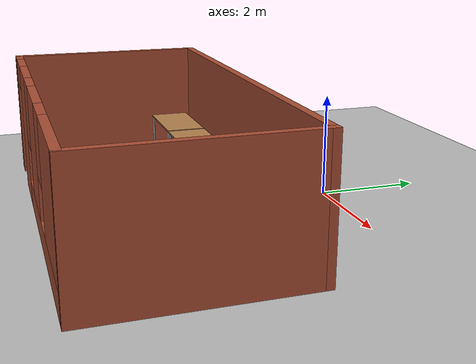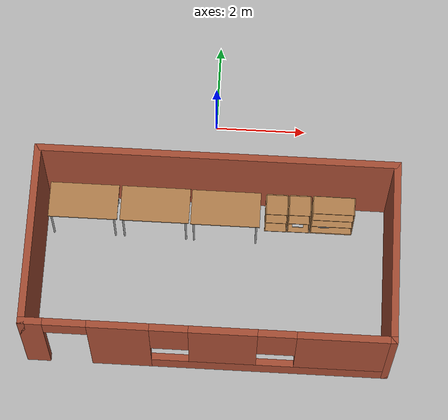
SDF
<sdf version="1.7">
 <world name="default">
  <light name="sun" type="directional">
   <pose>0 0 10 0 -0 0</pose>
   <diffuse>0.8 0.8 0.8 1</diffuse>
   <specular>0.2 0.2 0.2 1</specular>
   <attenuation>
    <range>1000</range>
    <constant>0.9</constant>
    <linear>0.01</linear>
    <quadratic>0.001</quadratic>
   </attenuation>
   <direction>-0.5 0.1 -0.9</direction>
   <spot><inner_angle>0</inner_angle><outer_angle>0</outer_angle><falloff>0</falloff></spot>
  </light>
  <model name="ground_plane">
   <static>1</static>
   <link name="link">
    <collision name="collision">
     <geometry><plane><normal>0 0 1</normal><size>100 100</size></plane></geometry>
     <surface>
      <contact><collide_bitmask>65535</collide_bitmask></contact>
      <friction><ode><mu>100</mu><mu2>50</mu2></ode></friction>
     </surface>
    </collision>
    <visual name="visual">
     <cast_shadows>0</cast_shadows>
     <geometry><plane><normal>0 0 1</normal><size>100 100</size></plane></geometry>
     <material>
      <script><uri>file://media/materials/scripts/gazebo.material</uri><name>Gazebo/Grey</name></script>
     </material>
    </visual>
   </link>
  </model>
  <gravity>0 0 -9.8</gravity>
  <magnetic_field>6e-06 2.3e-05 -4.2e-05</magnetic_field>
  <atmosphere type="adiabatic"/>
  <physics type="ode">
   <max_step_size>0.001</max_step_size>
   <real_time_factor>1</real_time_factor>
   <real_time_update_rate>1000</real_time_update_rate>
  </physics>
  <scene><ambient>0.4 0.4 0.4 1</ambient><background>0.7 0.7 0.7 1</background><shadows>1</shadows></scene>
  <audio><device>default</device></audio>
  <spherical_coordinates>
   <surface_model>EARTH_WGS84</surface_model>
   <latitude_deg>0</latitude_deg>
   <longitude_deg>0</longitude_deg>
   <elevation>0</elevation>
   <heading_deg>0</heading_deg>
  </spherical_coordinates>
  <model name="OfficeRoom">
   <pose>0.11 -2.8425 0 0 -0 0</pose>
   <link name="Wall_0">
    <collision name="Wall_0_Collision">
     <geometry><box><size>4 0.15 2.5</size></box></geometry>
     <pose>0 0 1.25 0 -0 0</pose>
    </collision>
    <visual name="Wall_0_Visual">
     <pose>0 0 1.25 0 -0 0</pose>
     <geometry><box><size>4 0.15 2.5</size></box></geometry>
     <material>
      <script><uri>file://media/materials/scripts/gazebo.material</uri><name>Gazebo/Bricks</name></script>
      <ambient>1 1 1 1</ambient>
     </material>
     <meta><layer>0</layer></meta>
    </visual>
    <pose>-3.8 -0.8425 0 0 -0 -1.5708</pose>
   </link>
   <link name="Wall_1">
    <pose>-0 -2.7675 0 0 -0 0</pose>
    <visual name="Wall_1_Visual_0">
     <pose>-3.6225 0 1.25 0 -0 0</pose>
     <geometry><box><size>0.505 0.15 2.5</size></box></geometry>
     <material>
      <script><uri>file://media/materials/scripts/gazebo.material</uri><name>Gazebo/Bricks</name></script>
      <ambient>1 1 1 1</ambient>
     </material>
     <meta><layer>0</layer></meta>
    </visual>
    <collision name="Wall_1_Collision_0">
     <geometry><box><size>0.505 0.15 2.5</size></box></geometry>
     <pose>-3.6225 0 1.25 0 -0 0</pose>
    </collision>
    <visual name="Wall_1_Visual_1">
     <pose>-1.83 0 1.25 0 -0 0</pose>
     <geometry><box><size>1.28 0.15 2.5</size></box></geometry>
     <material>
      <script><uri>file://media/materials/scripts/gazebo.material</uri><name>Gazebo/Bricks</name></script>
      <ambient>1 1 1 1</ambient>
     </material>
     <meta><layer>0</layer></meta>
    </visual>
    <collision name="Wall_1_Collision_1">
     <geometry><box><size>1.28 0.15 2.5</size></box></geometry>
     <pose>-1.83 0 1.25 0 -0 0</pose>
    </collision>
    <visual name="Wall_1_Visual_2">
     <pose>1.3425 0 0.25 0 -0 0</pose>
     <geometry><box><size>5.065 0.15 0.5</size></box></geometry>
     <material>
      <script><uri>file://media/materials/scripts/gazebo.material</uri><name>Gazebo/Bricks</name></script>
      <ambient>1 1 1 1</ambient>
     </material>
     <meta><layer>0</layer></meta>
    </visual>
    <collision name="Wall_1_Collision_2">
     <geometry><box><size>5.065 0.15 0.5</size></box></geometry>
     <pose>1.3425 0 0.25 0 -0 0</pose>
    </collision>
    <visual name="Wall_1_Visual_3">
     <pose>0.32 0 1.5 0 -0 0</pose>
     <geometry><box><size>1.42 0.15 2</size></box></geometry>
     <material>
      <script><uri>file://media/materials/scripts/gazebo.material</uri><name>Gazebo/Bricks</name></script>
      <ambient>1 1 1 1</ambient>
     </material>
     <meta><layer>0</layer></meta>
    </visual>
    <collision name="Wall_1_Collision_3">
     <geometry><box><size>1.42 0.15 2</size></box></geometry>
     <pose>0.32 0 1.5 0 -0 0</pose>
    </collision>
    <visual name="Wall_1_Visual_4">
     <pose>2.8525 0 1.5 0 -0 0</pose>
     <geometry><box><size>2.045 0.15 2</size></box></geometry>
     <material>
      <script><uri>file://media/materials/scripts/gazebo.material</uri><name>Gazebo/Bricks</name></script>
      <ambient>1 1 1 1</ambient>
     </material>
     <meta><layer>0</layer></meta>
    </visual>
    <collision name="Wall_1_Collision_4">
     <geometry><box><size>2.045 0.15 2</size></box></geometry>
     <pose>2.8525 0 1.5 0 -0 0</pose>
    </collision>
    <visual name="Wall_1_Visual_5">
     <pose>-0.79 0 1.9 0 -0 0</pose>
     <geometry><box><size>0.8 0.15 1.2</size></box></geometry>
     <material>
      <script><uri>file://media/materials/scripts/gazebo.material</uri><name>Gazebo/Bricks</name></script>
      <ambient>1 1 1 1</ambient>
     </material>
     <meta><layer>0</layer></meta>
    </visual>
    <collision name="Wall_1_Collision_5">
     <geometry><box><size>0.8 0.15 1.2</size></box></geometry>
     <pose>-0.79 0 1.9 0 -0 0</pose>
    </collision>
    <visual name="Wall_1_Visual_6">
     <pose>1.43 0 1.9 0 -0 0</pose>
     <geometry><box><size>0.8 0.15 1.2</size></box></geometry>
     <material>
      <script><uri>file://media/materials/scripts/gazebo.material</uri><name>Gazebo/Bricks</name></script>
      <ambient>1 1 1 1</ambient>
     </material>
     <meta><layer>0</layer></meta>
    </visual>
    <collision name="Wall_1_Collision_6">
     <geometry><box><size>0.8 0.15 1.2</size></box></geometry>
     <pose>1.43 0 1.9 0 -0 0</pose>
    </collision>
    <visual name="Wall_1_Visual_7">
     <pose>-2.92 0 2.25 0 -0 0</pose>
     <geometry><box><size>0.9 0.15 0.5</size></box></geometry>
     <material>
      <script><uri>file://media/materials/scripts/gazebo.material</uri><name>Gazebo/Bricks</name></script>
      <ambient>1 1 1 1</ambient>
     </material>
     <meta><layer>0</layer></meta>
    </visual>
    <collision name="Wall_1_Collision_7">
     <geometry><box><size>0.9 0.15 0.5</size></box></geometry>
     <pose>-2.92 0 2.25 0 -0 0</pose>
    </collision>
   </link>
   <link name="Wall_2">
    <collision name="Wall_2_Collision">
     <geometry><box><size>4 0.15 2.5</size></box></geometry>
     <pose>0 0 1.25 0 -0 0</pose>
    </collision>
    <visual name="Wall_2_Visual">
     <pose>0 0 1.25 0 -0 0</pose>
     <geometry><box><size>4 0.15 2.5</size></box></geometry>
     <material>
      <script><uri>file://media/materials/scripts/gazebo.material</uri><name>Gazebo/Bricks</name></script>
      <ambient>1 1 1 1</ambient>
     </material>
     <meta><layer>0</layer></meta>
    </visual>
    <pose>3.8 -0.8425 0 0 -0 1.5708</pose>
   </link>
   <link name="Wall_3">
    <collision name="Wall_3_Collision">
     <geometry><box><size>7.75 0.15 2.5</size></box></geometry>
     <pose>0 0 1.25 0 -0 0</pose>
    </collision>
    <visual name="Wall_3_Visual">
     <pose>0 0 1.25 0 -0 0</pose>
     <geometry><box><size>7.75 0.15 2.5</size></box></geometry>
     <material>
      <script><uri>file://media/materials/scripts/gazebo.material</uri><name>Gazebo/Bricks</name></script>
      <ambient>1 1 1 1</ambient>
     </material>
     <meta><layer>0</layer></meta>
    </visual>
    <pose>-0 1.0825 0 0 -0 3.14159</pose>
   </link>
   <static>1</static>
  </model>
  <model name="table">
   <static>1</static>
   <link name="link">
    <collision name="surface">
     <pose>0 0 1 0 -0 0</pose>
     <geometry><box><size>1.5 0.8 0.03</size></box></geometry>
     <surface><friction><ode><mu>0.6</mu><mu2>0.6</mu2></ode></friction></surface>
    </collision>
    <visual name="visual1">
     <pose>0 0 1 0 -0 0</pose>
     <geometry><box><size>1.5 0.8 0.03</size></box></geometry>
     <material>
      <script><uri>file://media/materials/scripts/gazebo.material</uri><name>Gazebo/Wood</name></script>
     </material>
    </visual>
    <collision name="front_left_leg">
     <pose>0.68 0.38 0.5 0 -0 0</pose>
     <geometry><cylinder><radius>0.02</radius><length>1</length></cylinder></geometry>
    </collision>
    <visual name="front_left_leg">
     <pose>0.68 0.38 0.5 0 -0 0</pose>
     <geometry><cylinder><radius>0.02</radius><length>1</length></cylinder></geometry>
     <material>
      <script><uri>file://media/materials/scripts/gazebo.material</uri><name>Gazebo/Grey</name></script>
     </material>
    </visual>
    <collision name="front_right_leg">
     <pose>0.68 -0.38 0.5 0 -0 0</pose>
     <geometry><cylinder><radius>0.02</radius><length>1</length></cylinder></geometry>
    </collision>
    <visual name="front_right_leg">
     <pose>0.68 -0.38 0.5 0 -0 0</pose>
     <geometry><cylinder><radius>0.02</radius><length>1</length></cylinder></geometry>
     <material>
      <script><uri>file://media/materials/scripts/gazebo.material</uri><name>Gazebo/Grey</name></script>
     </material>
    </visual>
    <collision name="back_right_leg">
     <pose>-0.68 -0.38 0.5 0 -0 0</pose>
     <geometry><cylinder><radius>0.02</radius><length>1</length></cylinder></geometry>
    </collision>
    <visual name="back_right_leg">
     <pose>-0.68 -0.38 0.5 0 -0 0</pose>
     <geometry><cylinder><radius>0.02</radius><length>1</length></cylinder></geometry>
     <material>
      <script><uri>file://media/materials/scripts/gazebo.material</uri><name>Gazebo/Grey</name></script>
     </material>
    </visual>
    <collision name="back_left_leg">
     <pose>-0.68 0.38 0.5 0 -0 0</pose>
     <geometry><cylinder><radius>0.02</radius><length>1</length></cylinder></geometry>
    </collision>
    <visual name="back_left_leg">
     <pose>-0.68 0.38 0.5 0 -0 0</pose>
     <geometry><cylinder><radius>0.02</radius><length>1</length></cylinder></geometry>
     <material>
      <script><uri>file://media/materials/scripts/gazebo.material</uri><name>Gazebo/Grey</name></script>
     </material>
    </visual>
   </link>
   <pose>-2.76807 -2.33243 0 0 -0 0</pose>
  </model>
  <model name="table_clone">
   <static>1</static>
   <link name="link">
    <collision name="surface">
     <pose>0 0 1 0 -0 0</pose>
     <geometry><box><size>1.5 0.8 0.03</size></box></geometry>
     <surface><friction><ode><mu>0.6</mu><mu2>0.6</mu2></ode></friction></surface>
    </collision>
    <visual name="visual1">
     <pose>0 0 1 0 -0 0</pose>
     <geometry><box><size>1.5 0.8 0.03</size></box></geometry>
     <material>
      <script><uri>file://media/materials/scripts/gazebo.material</uri><name>Gazebo/Wood</name></script>
     </material>
    </visual>
    <collision name="front_left_leg">
     <pose>0.68 0.38 0.5 0 -0 0</pose>
     <geometry><cylinder><radius>0.02</radius><length>1</length></cylinder></geometry>
    </collision>
    <visual name="front_left_leg">
     <pose>0.68 0.38 0.5 0 -0 0</pose>
     <geometry><cylinder><radius>0.02</radius><length>1</length></cylinder></geometry>
     <material>
      <script><uri>file://media/materials/scripts/gazebo.material</uri><name>Gazebo/Grey</name></script>
     </material>
    </visual>
    <collision name="front_right_leg">
     <pose>0.68 -0.38 0.5 0 -0 0</pose>
     <geometry><cylinder><radius>0.02</radius><length>1</length></cylinder></geometry>
    </collision>
    <visual name="front_right_leg">
     <pose>0.68 -0.38 0.5 0 -0 0</pose>
     <geometry><cylinder><radius>0.02</radius><length>1</length></cylinder></geometry>
     <material>
      <script><uri>file://media/materials/scripts/gazebo.material</uri><name>Gazebo/Grey</name></script>
     </material>
    </visual>
    <collision name="back_right_leg">
     <pose>-0.68 -0.38 0.5 0 -0 0</pose>
     <geometry><cylinder><radius>0.02</radius><length>1</length></cylinder></geometry>
    </collision>
    <visual name="back_right_leg">
     <pose>-0.68 -0.38 0.5 0 -0 0</pose>
     <geometry><cylinder><radius>0.02</radius><length>1</length></cylinder></geometry>
     <material>
      <script><uri>file://media/materials/scripts/gazebo.material</uri><name>Gazebo/Grey</name></script>
     </material>
    </visual>
    <collision name="back_left_leg">
     <pose>-0.68 0.38 0.5 0 -0 0</pose>
     <geometry><cylinder><radius>0.02</radius><length>1</length></cylinder></geometry>
    </collision>
    <visual name="back_left_leg">
     <pose>-0.68 0.38 0.5 0 -0 0</pose>
     <geometry><cylinder><radius>0.02</radius><length>1</length></cylinder></geometry>
     <material>
      <script><uri>file://media/materials/scripts/gazebo.material</uri><name>Gazebo/Grey</name></script>
     </material>
    </visual>
   </link>
   <pose>-1.20833 -2.33586 0 0 -0 0</pose>
  </model>
  <model name="table_clone_0">
   <static>1</static>
   <link name="link">
    <collision name="surface">
     <pose>0 0 1 0 -0 0</pose>
     <geometry><box><size>1.5 0.8 0.03</size></box></geometry>
     <surface><friction><ode><mu>0.6</mu><mu2>0.6</mu2></ode></friction></surface>
    </collision>
    <visual name="visual1">
     <pose>0 0 1 0 -0 0</pose>
     <geometry><box><size>1.5 0.8 0.03</size></box></geometry>
     <material>
      <script><uri>file://media/materials/scripts/gazebo.material</uri><name>Gazebo/Wood</name></script>
     </material>
    </visual>
    <collision name="front_left_leg">
     <pose>0.68 0.38 0.5 0 -0 0</pose>
     <geometry><cylinder><radius>0.02</radius><length>1</length></cylinder></geometry>
    </collision>
    <visual name="front_left_leg">
     <pose>0.68 0.38 0.5 0 -0 0</pose>
     <geometry><cylinder><radius>0.02</radius><length>1</length></cylinder></geometry>
     <material>
      <script><uri>file://media/materials/scripts/gazebo.material</uri><name>Gazebo/Grey</name></script>
     </material>
    </visual>
    <collision name="front_right_leg">
     <pose>0.68 -0.38 0.5 0 -0 0</pose>
     <geometry><cylinder><radius>0.02</radius><length>1</length></cylinder></geometry>
    </collision>
    <visual name="front_right_leg">
     <pose>0.68 -0.38 0.5 0 -0 0</pose>
     <geometry><cylinder><radius>0.02</radius><length>1</length></cylinder></geometry>
     <material>
      <script><uri>file://media/materials/scripts/gazebo.material</uri><name>Gazebo/Grey</name></script>
     </material>
    </visual>
    <collision name="back_right_leg">
     <pose>-0.68 -0.38 0.5 0 -0 0</pose>
     <geometry><cylinder><radius>0.02</radius><length>1</length></cylinder></geometry>
    </collision>
    <visual name="back_right_leg">
     <pose>-0.68 -0.38 0.5 0 -0 0</pose>
     <geometry><cylinder><radius>0.02</radius><length>1</length></cylinder></geometry>
     <material>
      <script><uri>file://media/materials/scripts/gazebo.material</uri><name>Gazebo/Grey</name></script>
     </material>
    </visual>
    <collision name="back_left_leg">
     <pose>-0.68 0.38 0.5 0 -0 0</pose>
     <geometry><cylinder><radius>0.02</radius><length>1</length></cylinder></geometry>
    </collision>
    <visual name="back_left_leg">
     <pose>-0.68 0.38 0.5 0 -0 0</pose>
     <geometry><cylinder><radius>0.02</radius><length>1</length></cylinder></geometry>
     <material>
      <script><uri>file://media/materials/scripts/gazebo.material</uri><name>Gazebo/Grey</name></script>
     </material>
    </visual>
   </link>
   <pose>0.327419 -2.34545 0 0 -0 0</pose>
  </model>
  <model name="cabinet">
   <static>1</static>
   <link name="cabinet_bottom_plate">
    <inertial>
     <pose>0 0 -1 0 -0 0</pose>
     <inertia><ixx>2.05</ixx><ixy>0</ixy><ixz>0</ixz><iyy>2.05</iyy><iyz>0</iyz><izz>2.05</izz></inertia>
     <mass>25</mass>
    </inertial>
    <collision name="cabinet_bottom_plate_geom">
     <pose>0 0 0.01 0 -0 0</pose>
     <geometry><box><size>0.45 0.45 0.02</size></box></geometry>
    </collision>
    <visual name="cabinet_bottom_plate_geom_visual">
     <pose>0 0 0.01 0 -0 0</pose>
     <geometry><box><size>0.45 0.45 0.02</size></box></geometry>
     <material>
      <script><uri>file://media/materials/scripts/gazebo.material</uri><name>Gazebo/Wood</name></script>
     </material>
    </visual>
    <collision name="cabinet_bottom_plate_geom_cabinet_back_plate">
     <pose>0.235 0 0.51 0 -0 0</pose>
     <geometry><box><size>0.02 0.45 1.02</size></box></geometry>
    </collision>
    <visual name="cabinet_bottom_plate_geom_cabinet_back_plate_visual">
     <pose>0.235 0 0.51 0 -0 0</pose>
     <geometry><box><size>0.02 0.45 1.02</size></box></geometry>
     <material>
      <script><uri>file://media/materials/scripts/gazebo.material</uri><name>Gazebo/Wood</name></script>
     </material>
    </visual>
    <collision name="cabinet_bottom_plate_geom_cabinet_left_plate">
     <pose>0 0.235 0.51 0 -0 0</pose>
     <geometry><box><size>0.45 0.02 1.02</size></box></geometry>
    </collision>
    <visual name="cabinet_bottom_plate_geom_cabinet_left_plate_visual">
     <pose>0 0.235 0.51 0 -0 0</pose>
     <geometry><box><size>0.45 0.02 1.02</size></box></geometry>
     <material>
      <script><uri>file://media/materials/scripts/gazebo.material</uri><name>Gazebo/Wood</name></script>
     </material>
    </visual>
    <collision name="cabinet_bottom_plate_geom_cabinet_middle_plate">
     <pose>0 0 0.51 0 -0 0</pose>
     <geometry><box><size>0.45 0.45 0.02</size></box></geometry>
    </collision>
    <visual name="cabinet_bottom_plate_geom_cabinet_middle_plate_visual">
     <pose>0 0 0.51 0 -0 0</pose>
     <geometry><box><size>0.45 0.45 0.02</size></box></geometry>
     <material>
      <script><uri>file://media/materials/scripts/gazebo.material</uri><name>Gazebo/Wood</name></script>
     </material>
    </visual>
    <collision name="cabinet_bottom_plate_geom_cabinet_right_plate">
     <pose>0 -0.235 0.51 0 -0 0</pose>
     <geometry><box><size>0.45 0.02 1.02</size></box></geometry>
    </collision>
    <visual name="cabinet_bottom_plate_geom_cabinet_right_plate_visual">
     <pose>0 -0.235 0.51 0 -0 0</pose>
     <geometry><box><size>0.45 0.02 1.02</size></box></geometry>
     <material>
      <script><uri>file://media/materials/scripts/gazebo.material</uri><name>Gazebo/Wood</name></script>
     </material>
    </visual>
    <collision name="cabinet_bottom_plate_geom_cabinet_top_plate">
     <pose>0 0 1.01 0 -0 0</pose>
     <geometry><box><size>0.45 0.45 0.02</size></box></geometry>
    </collision>
    <visual name="cabinet_bottom_plate_geom_cabinet_top_plate_visual">
     <pose>0 0 1.01 0 -0 0</pose>
     <geometry><box><size>0.45 0.45 0.02</size></box></geometry>
     <material>
      <script><uri>file://media/materials/scripts/gazebo.material</uri><name>Gazebo/Wood</name></script>
     </material>
    </visual>
   </link>
   <pose>1.43575 -2.22537 0.0502 0 -0 1.57636</pose>
  </model>
  <model name="cabinet_clone">
   <static>1</static>
   <link name="cabinet_bottom_plate">
    <inertial>
     <pose>0 0 -1 0 -0 0</pose>
     <inertia><ixx>2.05</ixx><ixy>0</ixy><ixz>0</ixz><iyy>2.05</iyy><iyz>0</iyz><izz>2.05</izz></inertia>
     <mass>25</mass>
    </inertial>
    <collision name="cabinet_bottom_plate_geom">
     <pose>0 0 0.01 0 -0 0</pose>
     <geometry><box><size>0.45 0.45 0.02</size></box></geometry>
    </collision>
    <visual name="cabinet_bottom_plate_geom_visual">
     <pose>0 0 0.01 0 -0 0</pose>
     <geometry><box><size>0.45 0.45 0.02</size></box></geometry>
     <material>
      <script><uri>file://media/materials/scripts/gazebo.material</uri><name>Gazebo/Wood</name></script>
     </material>
    </visual>
    <collision name="cabinet_bottom_plate_geom_cabinet_back_plate">
     <pose>0.235 0 0.51 0 -0 0</pose>
     <geometry><box><size>0.02 0.45 1.02</size></box></geometry>
    </collision>
    <visual name="cabinet_bottom_plate_geom_cabinet_back_plate_visual">
     <pose>0.235 0 0.51 0 -0 0</pose>
     <geometry><box><size>0.02 0.45 1.02</size></box></geometry>
     <material>
      <script><uri>file://media/materials/scripts/gazebo.material</uri><name>Gazebo/Wood</name></script>
     </material>
    </visual>
    <collision name="cabinet_bottom_plate_geom_cabinet_left_plate">
     <pose>0 0.235 0.51 0 -0 0</pose>
     <geometry><box><size>0.45 0.02 1.02</size></box></geometry>
    </collision>
    <visual name="cabinet_bottom_plate_geom_cabinet_left_plate_visual">
     <pose>0 0.235 0.51 0 -0 0</pose>
     <geometry><box><size>0.45 0.02 1.02</size></box></geometry>
     <material>
      <script><uri>file://media/materials/scripts/gazebo.material</uri><name>Gazebo/Wood</name></script>
     </material>
    </visual>
    <collision name="cabinet_bottom_plate_geom_cabinet_middle_plate">
     <pose>0 0 0.51 0 -0 0</pose>
     <geometry><box><size>0.45 0.45 0.02</size></box></geometry>
    </collision>
    <visual name="cabinet_bottom_plate_geom_cabinet_middle_plate_visual">
     <pose>0 0 0.51 0 -0 0</pose>
     <geometry><box><size>0.45 0.45 0.02</size></box></geometry>
     <material>
      <script><uri>file://media/materials/scripts/gazebo.material</uri><name>Gazebo/Wood</name></script>
     </material>
    </visual>
    <collision name="cabinet_bottom_plate_geom_cabinet_right_plate">
     <pose>0 -0.235 0.51 0 -0 0</pose>
     <geometry><box><size>0.45 0.02 1.02</size></box></geometry>
    </collision>
    <visual name="cabinet_bottom_plate_geom_cabinet_right_plate_visual">
     <pose>0 -0.235 0.51 0 -0 0</pose>
     <geometry><box><size>0.45 0.02 1.02</size></box></geometry>
     <material>
      <script><uri>file://media/materials/scripts/gazebo.material</uri><name>Gazebo/Wood</name></script>
     </material>
    </visual>
    <collision name="cabinet_bottom_plate_geom_cabinet_top_plate">
     <pose>0 0 1.01 0 -0 0</pose>
     <geometry><box><size>0.45 0.45 0.02</size></box></geometry>
    </collision>
    <visual name="cabinet_bottom_plate_geom_cabinet_top_plate_visual">
     <pose>0 0 1.01 0 -0 0</pose>
     <geometry><box><size>0.45 0.45 0.02</size></box></geometry>
     <material>
      <script><uri>file://media/materials/scripts/gazebo.material</uri><name>Gazebo/Wood</name></script>
     </material>
    </visual>
   </link>
   <pose>1.93575 -2.22011 0.0502 0 -0 1.57636</pose>
  </model>
  <model name="bookshelf">
   <static>1</static>
   <link name="link">
    <inertial><mass>1</mass></inertial>
    <collision name="back">
     <pose>0 0.005 0.6 0 -0 0</pose>
     <geometry><box><size>0.9 0.01 1.2</size></box></geometry>
    </collision>
    <visual name="visual1">
     <pose>0 0.005 0.6 0 -0 0</pose>
     <geometry><box><size>0.9 0.01 1.2</size></box></geometry>
     <material>
      <script><uri>file://media/materials/scripts/gazebo.material</uri><name>Gazebo/Wood</name></script>
     </material>
    </visual>
    <collision name="left_side">
     <pose>0.45 -0.195 0.6 0 -0 0</pose>
     <geometry><box><size>0.02 0.4 1.2</size></box></geometry>
    </collision>
    <visual name="visual2">
     <pose>0.45 -0.195 0.6 0 -0 0</pose>
     <geometry><box><size>0.02 0.4 1.2</size></box></geometry>
     <material>
      <script><uri>file://media/materials/scripts/gazebo.material</uri><name>Gazebo/Wood</name></script>
     </material>
    </visual>
    <collision name="right_side">
     <pose>-0.45 -0.195 0.6 0 -0 0</pose>
     <geometry><box><size>0.02 0.4 1.2</size></box></geometry>
    </collision>
    <visual name="visual3">
     <pose>-0.45 -0.195 0.6 0 -0 0</pose>
     <geometry><box><size>0.02 0.4 1.2</size></box></geometry>
     <material>
      <script><uri>file://media/materials/scripts/gazebo.material</uri><name>Gazebo/Wood</name></script>
     </material>
    </visual>
    <collision name="bottom">
     <pose>0 -0.195 0.03 0 -0 0</pose>
     <geometry><box><size>0.88 0.4 0.06</size></box></geometry>
    </collision>
    <visual name="visual4">
     <pose>0 -0.195 0.03 0 -0 0</pose>
     <geometry><box><size>0.88 0.4 0.06</size></box></geometry>
     <material>
      <script><uri>file://media/materials/scripts/gazebo.material</uri><name>Gazebo/Wood</name></script>
     </material>
    </visual>
    <collision name="top">
     <pose>0 -0.195 1.19 0 -0 0</pose>
     <geometry><box><size>0.88 0.4 0.02</size></box></geometry>
    </collision>
    <visual name="visual5">
     <pose>0 -0.195 1.19 0 -0 0</pose>
     <geometry><box><size>0.88 0.4 0.02</size></box></geometry>
     <material>
      <script><uri>file://media/materials/scripts/gazebo.material</uri><name>Gazebo/Wood</name></script>
     </material>
    </visual>
    <collision name="low_shelf">
     <pose>0 -0.195 0.43 0 -0 0</pose>
     <geometry><box><size>0.88 0.4 0.02</size></box></geometry>
    </collision>
    <visual name="visual6">
     <pose>0 -0.195 0.43 0 -0 0</pose>
     <geometry><box><size>0.88 0.4 0.02</size></box></geometry>
     <material>
      <script><uri>file://media/materials/scripts/gazebo.material</uri><name>Gazebo/Wood</name></script>
     </material>
    </visual>
    <collision name="high_shelf">
     <pose>0 -0.195 0.8 0 -0 0</pose>
     <geometry><box><size>0.88 0.4 0.02</size></box></geometry>
    </collision>
    <visual name="visual7">
     <pose>0 -0.195 0.8 0 -0 0</pose>
     <geometry><box><size>0.88 0.4 0.02</size></box></geometry>
     <material>
      <script><uri>file://media/materials/scripts/gazebo.material</uri><name>Gazebo/Wood</name></script>
     </material>
    </visual>
   </link>
   <pose>2.66147 -2.03296 0 0 -0 0</pose>
  </model>
  <model name="Floor_room">
   <link name="main">
    <pose>0 0 0.01 0 -0 0</pose>
    <collision name="main_Collision"><geometry><box><size>20 20 0.001</size></box></geometry></collision>
    <visual name="main_Visual">
     <geometry><box><size>20 20 0.001</size></box></geometry>
     <material>
      <script>
       <uri>model://Floor_room/materials/scripts</uri>
       <uri>model://Floor_room/materials/textures</uri>
       <name>floor_room</name>
      </script>
     </material>
    </visual>
   </link>
   <static>1</static>
   <pose>-0.057125 -1.05521 0 0 -0 0</pose>
  </model>
  <model name="book_20">
   <link name="cover">
    <pose>0 -0.000108 0.015405 0 -0 0</pose>
    <visual name="visual">
     <geometry><box><size>0.245 0.16 0.03</size></box></geometry>
     <material>
      <script>
       <uri>model://book_20/materials/scripts</uri>
       <uri>model://book_20/materials/textures</uri>
       <name>book_20</name>
      </script>
     </material>
    </visual>
    <collision name="collision"><geometry><box><size>0.245 0.16 0.03</size></box></geometry></collision>
   </link>
   <link name="page">
    <pose>0 0.000608 0.015405 0 -0 0</pose>
    <visual name="visual">
     <geometry><box><size>0.24502 0.15862 0.028</size></box></geometry>
     <material>
      <lighting>1</lighting>
      <ambient>1 1 1 1</ambient>
      <diffuse>1 1 1 1</diffuse>
      <specular>0.01 0.01 0.01 1</specular>
      <emissive>0 0 0 1</emissive>
      <shader type="vertex"><normal_map>__default__</normal_map></shader>
     </material>
    </visual>
    <collision name="collision"><geometry><box><size>0.245 0.16 0.03</size></box></geometry></collision>
   </link>
   <static>1</static>
   <pose>1.92773 -2.2533 0.079836 0 -0 0</pose>
  </model>
  <model name="book_12">
   <link name="cover">
    <pose>0 -0.000108 0.015405 0 -0 0</pose>
    <visual name="visual">
     <geometry><box><size>0.245 0.16 0.03</size></box></geometry>
     <material>
      <script>
       <uri>model://book_12/materials/scripts</uri>
       <uri>model://book_12/materials/textures</uri>
       <name>book_12</name>
      </script>
     </material>
    </visual>
    <collision name="collision"><geometry><box><size>0.245 0.16 0.03</size></box></geometry></collision>
   </link>
   <link name="page">
    <pose>0 0.000608 0.015405 0 -0 0</pose>
    <visual name="visual">
     <geometry><box><size>0.24502 0.15862 0.028</size></box></geometry>
     <material>
      <lighting>1</lighting>
      <ambient>1 1 1 1</ambient>
      <diffuse>1 1 1 1</diffuse>
      <specular>0.01 0.01 0.01 1</specular>
      <emissive>0 0 0 1</emissive>
      <shader type="vertex"><normal_map>__default__</normal_map></shader>
     </material>
    </visual>
    <collision name="collision"><geometry><box><size>0.245 0.16 0.03</size></box></geometry></collision>
   </link>
   <static>1</static>
   <pose>2.50243 -2.24708 0.101188 0 -0 0</pose>
  </model>
 </world>
</sdf>
